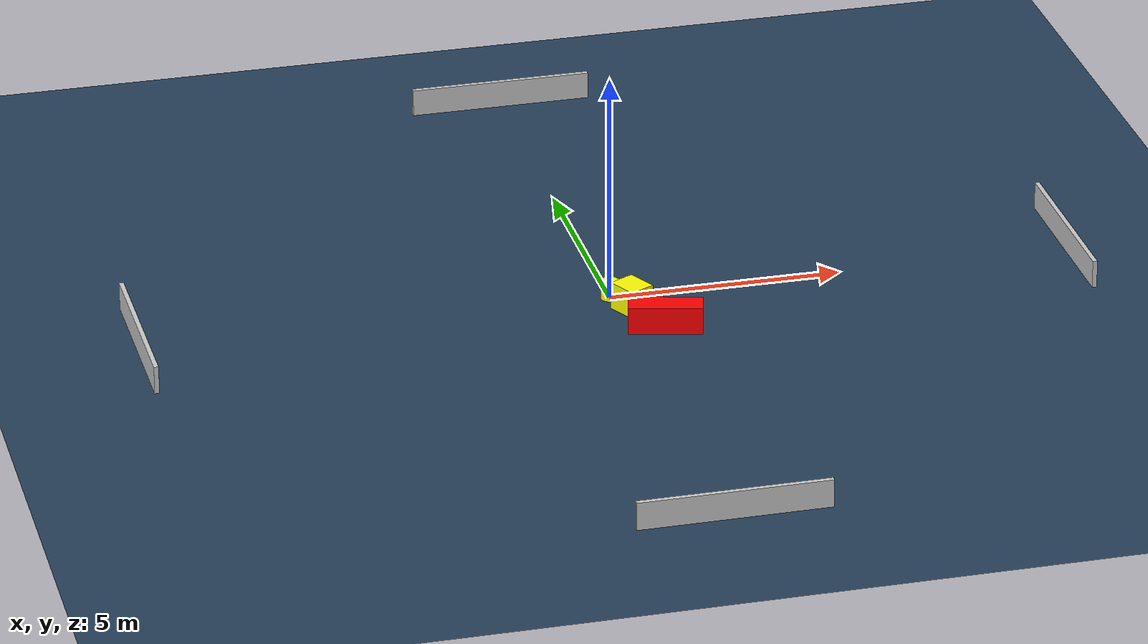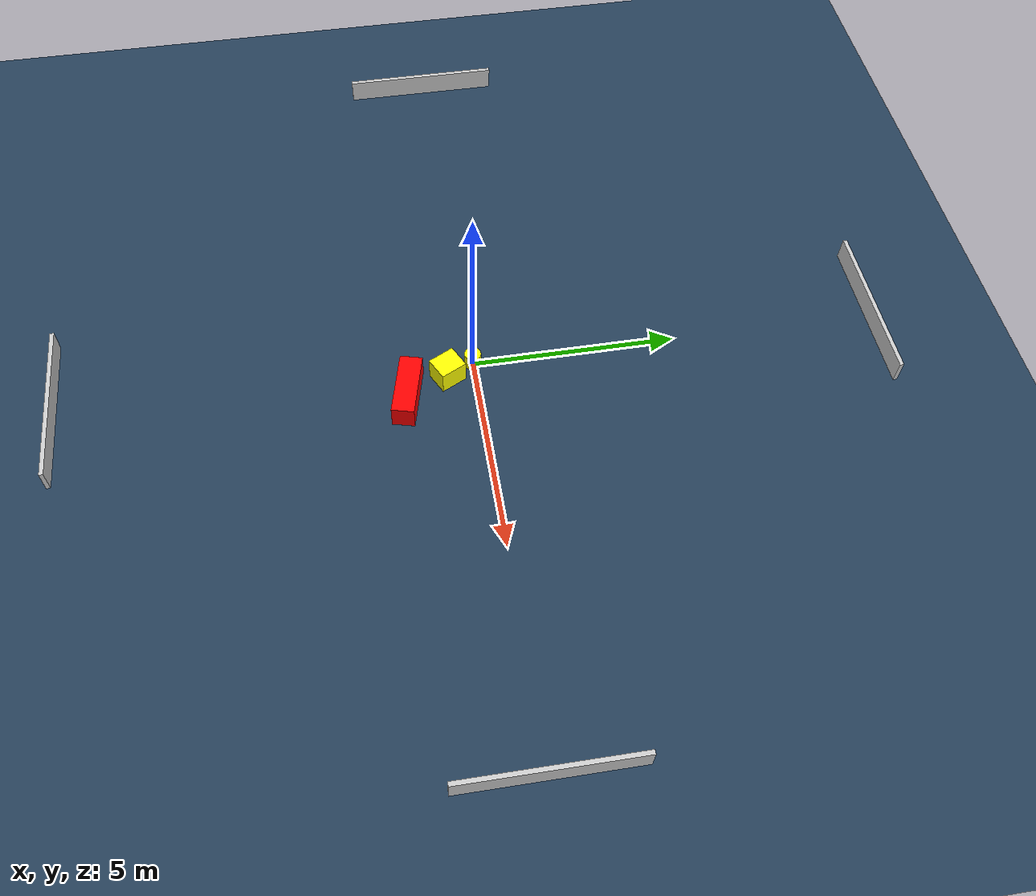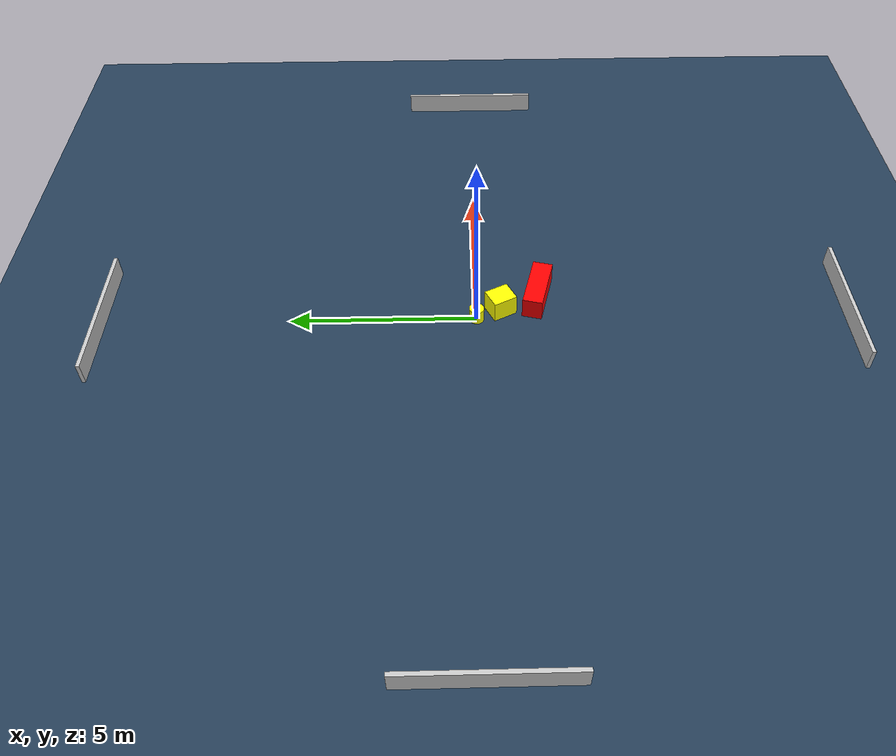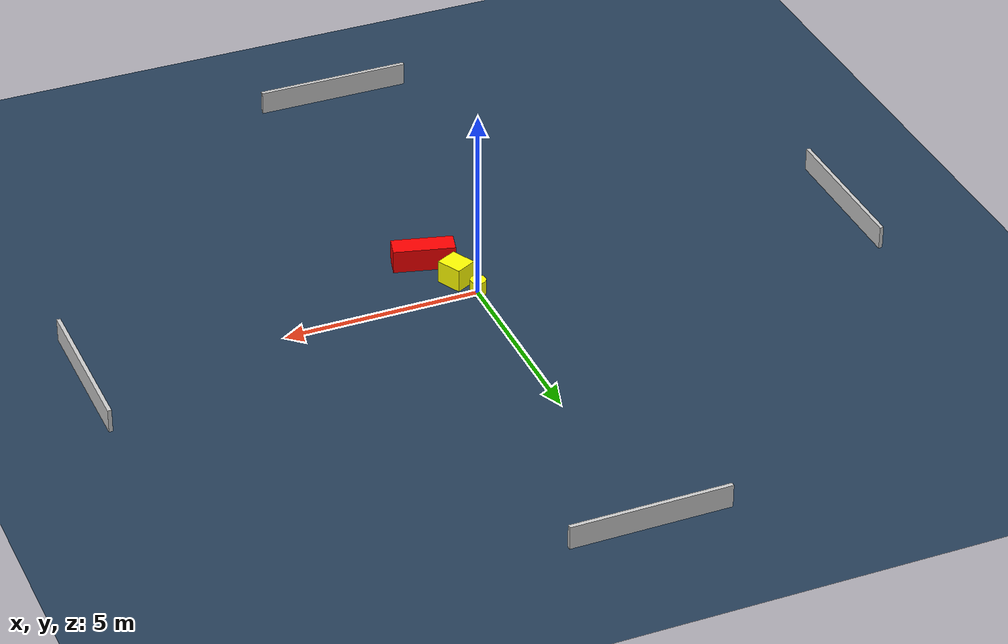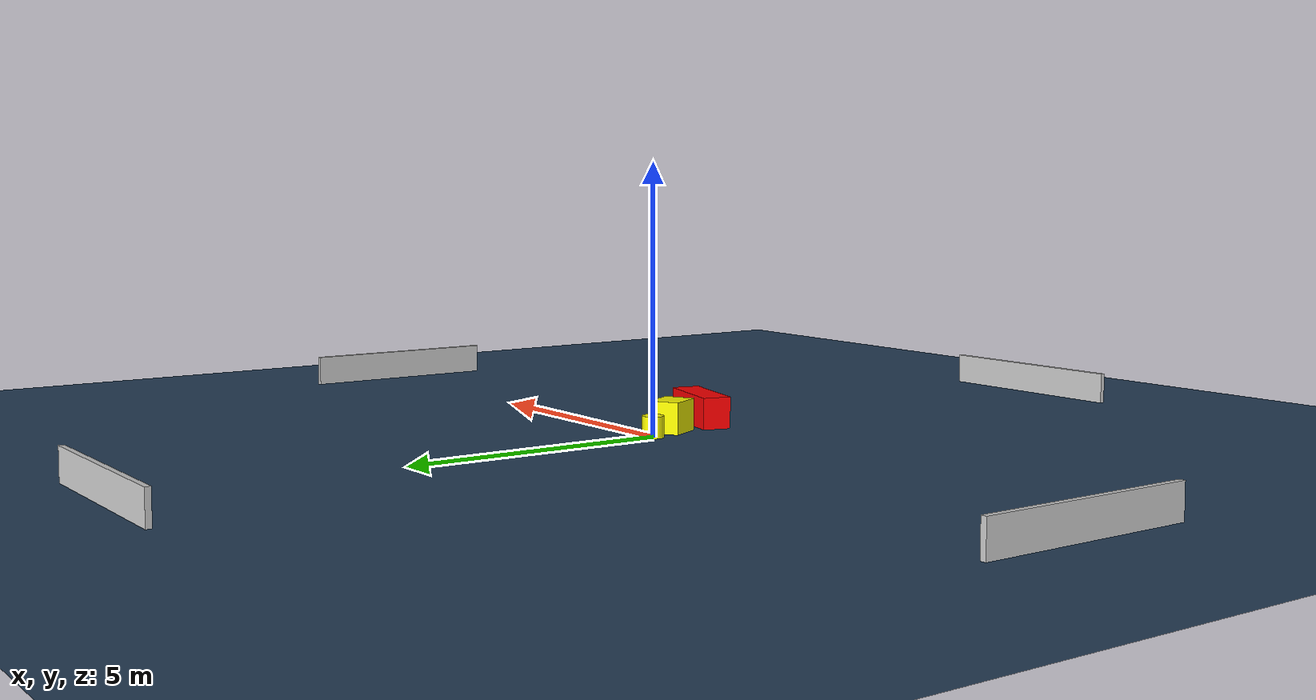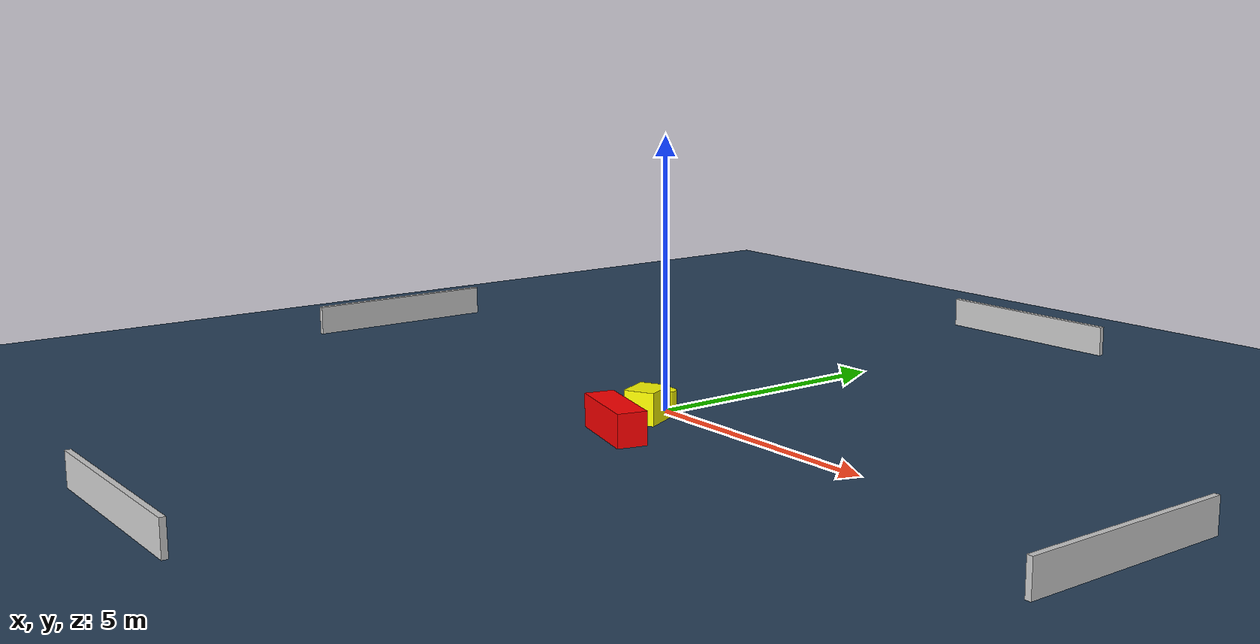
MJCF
<?xml version="1.0" ?>
<mujoco model="generated_environment">
  <option timestep="0.01" integrator="RK4" cone="elliptic"/>
  <default>
    <geom density="1"/>
  </default>
  <asset>
    <texture builtin="gradient" height="3072" name="skybox" rgb1="0.3 0.5 0.7" rgb2="0 0 0" type="skybox" width="512"/>
    <texture builtin="checker" height="300" name="groundplane" rgb1="0.2 0.3 0.4" rgb2="0.1 0.2 0.3" type="2d" width="300"/>
    <material name="groundplane" reflectance="0.2" texrepeat="5 5" texture="groundplane"/>
  </asset>
  <worldbody>
    <light dir="0 0 -1" directional="true" pos="0 0 1.5"/>
    <geom condim="3" friction="0.5 0.005 0.001" material="groundplane" name="floor" pos="0 0 0" size="0 0 0.05" type="plane"/>
    <body name="walls">
      <geom name="wall_1" condim="4" pos="-10.0 0.0 0.3" rgba="0.800000011920929 0.800000011920929 0.800000011920929 1.0" size="0.05 2.0 0.3" type="box"/>
      <geom name="wall_2" condim="4" pos="10.0 0.0 0.3" rgba="0.800000011920929 0.800000011920929 0.800000011920929 1.0" size="0.05 2.0 0.3" type="box"/>
      <geom name="wall_3" condim="4" pos="0.0 -10.0 0.3" rgba="0.800000011920929 0.800000011920929 0.800000011920929 1.0" size="2.0 0.05 0.3" type="box"/>
      <geom name="wall_4" condim="4" pos="0.0 10.0 0.3" rgba="0.800000011920929 0.800000011920929 0.800000011920929 1.0" size="2.0 0.05 0.3" type="box"/>
    </body>
    <body name="robot">
      <joint name="joint_x" type="slide" pos="0 0 0" axis="1 0 0"/>
      <joint name="joint_y" type="slide" pos="0 0 0" axis="0 1 0"/>
      <geom name="robot" type="cylinder" pos="0.0 0.0 0.2" size="0.2 0.2 0.0" mass="5.0" friction="1.0 0.005 0.0001" condim="4" rgba="1.0 1.0 0.0 1.0"/>
    </body>
    <body name="obstacle_1_movable">
      <geom name="obstacle_1_movable" condim="4" pos="0.3067467012419309 -0.6525415470036414 0.3" euler="0 0 116.85526860608077" friction="0.0 0.005 0.001" rgba="1.0 1.0 0.0 1.0" size="0.33393745407341613 0.28850330766857346 0.3" type="box" mass="0.1"/>
      <joint type="free"/>
    </body>
    <body name="obstacle_2_static">
      <geom name="obstacle_2_static" condim="4" pos="0.7664893334036467 -1.676093710286893 0.3" euler="0 0 165.58685331298048" friction="0.0 0.005 0.001" rgba="1.0 0.0 0.0 1.0" size="0.7769656881643323 0.2702535888452541 0.3" type="box"/>
    </body>
  </worldbody>
  <actuator>
    <motor name="actuator_x" joint="joint_x" gear="1" ctrlrange="-1 1"/>
    <motor name="actuator_y" joint="joint_y" gear="1" ctrlrange="-1 1"/>
  </actuator>
</mujoco>
